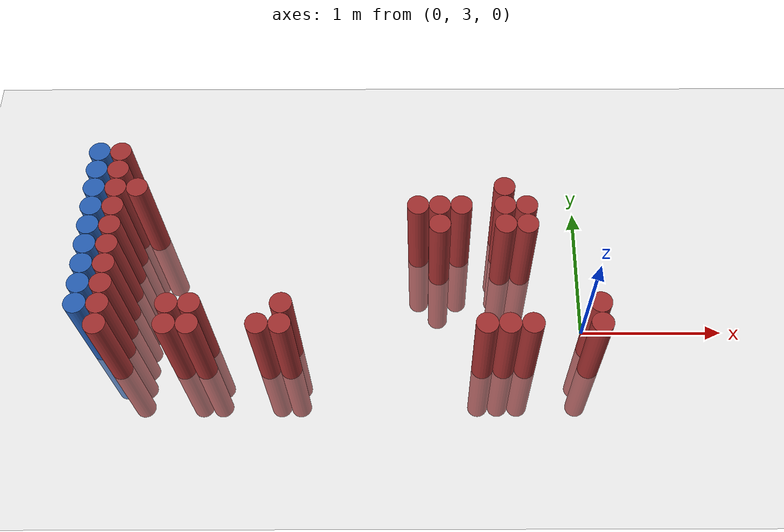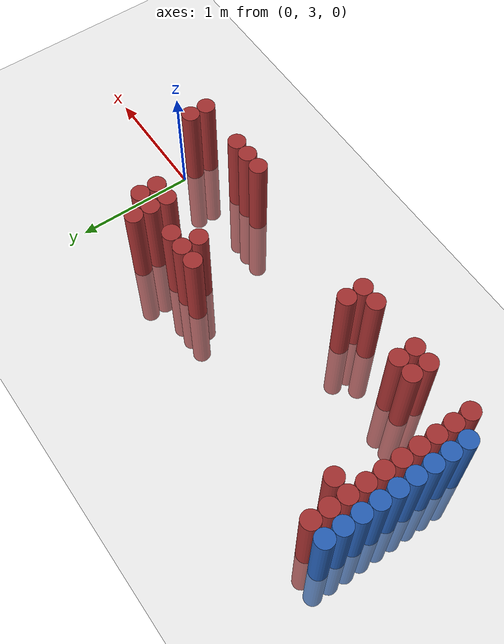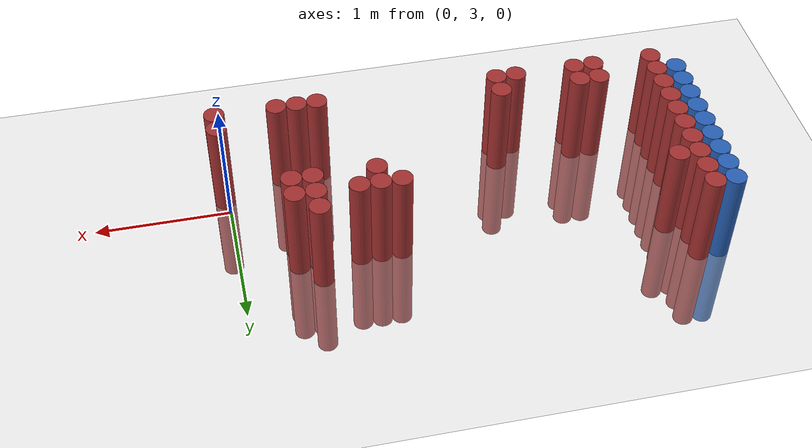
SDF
<sdf version="1.6">
 <world name="default">
  <model name="ground_plane">
   <static>1</static>
   <link name="link">
    <collision name="collision">
     <geometry><plane><normal>0 0 1</normal><size>100 100</size></plane></geometry>
     <surface><friction><ode><mu>100</mu><mu2>50</mu2></ode></friction></surface>
    </collision>
    <visual name="visual">
     <cast_shadows>0</cast_shadows>
     <geometry><plane><normal>0 0 1</normal><size>100 100</size></plane></geometry>
     <material>
      <script><uri>file://media/materials/scripts/gazebo.material</uri><name>Gazebo/Grey</name></script>
     </material>
    </visual>
   </link>
  </model>
  <model name="unit_cylinder_153">
   <static>1</static>
   <pose>-3.425000 2.875000 0.000000 0.000000 0.000000 0.000000</pose>
   <link name="link">
    <inertial>
     <mass>1</mass>
     <inertia><ixx>0.145833</ixx><ixy>0</ixy><ixz>0</ixz><iyy>0.145833</iyy><iyz>0</iyz><izz>0.125</izz></inertia>
    </inertial>
    <collision name="collision">
     <geometry><cylinder><radius>0.075000</radius><length>1.5</length></cylinder></geometry>
    </collision>
    <visual name="visual">
     <geometry><cylinder><radius>0.075000</radius><length>1.5</length></cylinder></geometry>
     <material>
      <ambient>0.152000 0.379000 0.720000 1</ambient>
      <diffuse>0.152000 0.379000 0.720000 1</diffuse>
     </material>
     <material>
      <script><name>Gazebo/Grey</name><uri>file://media/materials/scripts/gazebo.material</uri></script>
     </material>
    </visual>
   </link>
  </model>
  <model name="unit_cylinder_155">
   <static>1</static>
   <pose>-3.425000 3.025000 0.000000 0.000000 0.000000 0.000000</pose>
   <link name="link">
    <inertial>
     <mass>1</mass>
     <inertia><ixx>0.145833</ixx><ixy>0</ixy><ixz>0</ixz><iyy>0.145833</iyy><iyz>0</iyz><izz>0.125</izz></inertia>
    </inertial>
    <collision name="collision">
     <geometry><cylinder><radius>0.075000</radius><length>1.5</length></cylinder></geometry>
    </collision>
    <visual name="visual">
     <geometry><cylinder><radius>0.075000</radius><length>1.5</length></cylinder></geometry>
     <material>
      <ambient>0.152000 0.379000 0.720000 1</ambient>
      <diffuse>0.152000 0.379000 0.720000 1</diffuse>
     </material>
     <material>
      <script><name>Gazebo/Grey</name><uri>file://media/materials/scripts/gazebo.material</uri></script>
     </material>
    </visual>
   </link>
  </model>
  <model name="unit_cylinder_157">
   <static>1</static>
   <pose>-3.425000 3.175000 0.000000 0.000000 0.000000 0.000000</pose>
   <link name="link">
    <inertial>
     <mass>1</mass>
     <inertia><ixx>0.145833</ixx><ixy>0</ixy><ixz>0</ixz><iyy>0.145833</iyy><iyz>0</iyz><izz>0.125</izz></inertia>
    </inertial>
    <collision name="collision">
     <geometry><cylinder><radius>0.075000</radius><length>1.5</length></cylinder></geometry>
    </collision>
    <visual name="visual">
     <geometry><cylinder><radius>0.075000</radius><length>1.5</length></cylinder></geometry>
     <material>
      <ambient>0.152000 0.379000 0.720000 1</ambient>
      <diffuse>0.152000 0.379000 0.720000 1</diffuse>
     </material>
     <material>
      <script><name>Gazebo/Grey</name><uri>file://media/materials/scripts/gazebo.material</uri></script>
     </material>
    </visual>
   </link>
  </model>
  <model name="unit_cylinder_159">
   <static>1</static>
   <pose>-3.425000 3.325000 0.000000 0.000000 0.000000 0.000000</pose>
   <link name="link">
    <inertial>
     <mass>1</mass>
     <inertia><ixx>0.145833</ixx><ixy>0</ixy><ixz>0</ixz><iyy>0.145833</iyy><iyz>0</iyz><izz>0.125</izz></inertia>
    </inertial>
    <collision name="collision">
     <geometry><cylinder><radius>0.075000</radius><length>1.5</length></cylinder></geometry>
    </collision>
    <visual name="visual">
     <geometry><cylinder><radius>0.075000</radius><length>1.5</length></cylinder></geometry>
     <material>
      <ambient>0.152000 0.379000 0.720000 1</ambient>
      <diffuse>0.152000 0.379000 0.720000 1</diffuse>
     </material>
     <material>
      <script><name>Gazebo/Grey</name><uri>file://media/materials/scripts/gazebo.material</uri></script>
     </material>
    </visual>
   </link>
  </model>
  <model name="unit_cylinder_161">
   <static>1</static>
   <pose>-3.425000 3.475000 0.000000 0.000000 0.000000 0.000000</pose>
   <link name="link">
    <inertial>
     <mass>1</mass>
     <inertia><ixx>0.145833</ixx><ixy>0</ixy><ixz>0</ixz><iyy>0.145833</iyy><iyz>0</iyz><izz>0.125</izz></inertia>
    </inertial>
    <collision name="collision">
     <geometry><cylinder><radius>0.075000</radius><length>1.5</length></cylinder></geometry>
    </collision>
    <visual name="visual">
     <geometry><cylinder><radius>0.075000</radius><length>1.5</length></cylinder></geometry>
     <material>
      <ambient>0.152000 0.379000 0.720000 1</ambient>
      <diffuse>0.152000 0.379000 0.720000 1</diffuse>
     </material>
     <material>
      <script><name>Gazebo/Grey</name><uri>file://media/materials/scripts/gazebo.material</uri></script>
     </material>
    </visual>
   </link>
  </model>
  <model name="unit_cylinder_163">
   <static>1</static>
   <pose>-3.425000 3.625000 0.000000 0.000000 0.000000 0.000000</pose>
   <link name="link">
    <inertial>
     <mass>1</mass>
     <inertia><ixx>0.145833</ixx><ixy>0</ixy><ixz>0</ixz><iyy>0.145833</iyy><iyz>0</iyz><izz>0.125</izz></inertia>
    </inertial>
    <collision name="collision">
     <geometry><cylinder><radius>0.075000</radius><length>1.5</length></cylinder></geometry>
    </collision>
    <visual name="visual">
     <geometry><cylinder><radius>0.075000</radius><length>1.5</length></cylinder></geometry>
     <material>
      <ambient>0.152000 0.379000 0.720000 1</ambient>
      <diffuse>0.152000 0.379000 0.720000 1</diffuse>
     </material>
     <material>
      <script><name>Gazebo/Grey</name><uri>file://media/materials/scripts/gazebo.material</uri></script>
     </material>
    </visual>
   </link>
  </model>
  <model name="unit_cylinder_165">
   <static>1</static>
   <pose>-3.425000 3.775000 0.000000 0.000000 0.000000 0.000000</pose>
   <link name="link">
    <inertial>
     <mass>1</mass>
     <inertia><ixx>0.145833</ixx><ixy>0</ixy><ixz>0</ixz><iyy>0.145833</iyy><iyz>0</iyz><izz>0.125</izz></inertia>
    </inertial>
    <collision name="collision">
     <geometry><cylinder><radius>0.075000</radius><length>1.5</length></cylinder></geometry>
    </collision>
    <visual name="visual">
     <geometry><cylinder><radius>0.075000</radius><length>1.5</length></cylinder></geometry>
     <material>
      <ambient>0.152000 0.379000 0.720000 1</ambient>
      <diffuse>0.152000 0.379000 0.720000 1</diffuse>
     </material>
     <material>
      <script><name>Gazebo/Grey</name><uri>file://media/materials/scripts/gazebo.material</uri></script>
     </material>
    </visual>
   </link>
  </model>
  <model name="unit_cylinder_167">
   <static>1</static>
   <pose>-3.425000 3.925000 0.000000 0.000000 0.000000 0.000000</pose>
   <link name="link">
    <inertial>
     <mass>1</mass>
     <inertia><ixx>0.145833</ixx><ixy>0</ixy><ixz>0</ixz><iyy>0.145833</iyy><iyz>0</iyz><izz>0.125</izz></inertia>
    </inertial>
    <collision name="collision">
     <geometry><cylinder><radius>0.075000</radius><length>1.5</length></cylinder></geometry>
    </collision>
    <visual name="visual">
     <geometry><cylinder><radius>0.075000</radius><length>1.5</length></cylinder></geometry>
     <material>
      <ambient>0.152000 0.379000 0.720000 1</ambient>
      <diffuse>0.152000 0.379000 0.720000 1</diffuse>
     </material>
     <material>
      <script><name>Gazebo/Grey</name><uri>file://media/materials/scripts/gazebo.material</uri></script>
     </material>
    </visual>
   </link>
  </model>
  <model name="unit_cylinder_169">
   <static>1</static>
   <pose>-3.425000 4.075000 0.000000 0.000000 0.000000 0.000000</pose>
   <link name="link">
    <inertial>
     <mass>1</mass>
     <inertia><ixx>0.145833</ixx><ixy>0</ixy><ixz>0</ixz><iyy>0.145833</iyy><iyz>0</iyz><izz>0.125</izz></inertia>
    </inertial>
    <collision name="collision">
     <geometry><cylinder><radius>0.075000</radius><length>1.5</length></cylinder></geometry>
    </collision>
    <visual name="visual">
     <geometry><cylinder><radius>0.075000</radius><length>1.5</length></cylinder></geometry>
     <material>
      <ambient>0.152000 0.379000 0.720000 1</ambient>
      <diffuse>0.152000 0.379000 0.720000 1</diffuse>
     </material>
     <material>
      <script><name>Gazebo/Grey</name><uri>file://media/materials/scripts/gazebo.material</uri></script>
     </material>
    </visual>
   </link>
  </model>
  <model name="unit_cylinder_240">
   <static>1</static>
   <pose>-3.425000 2.875000 0.000000 0.000000 0.000000 0.000000</pose>
   <link name="link">
    <inertial>
     <mass>1</mass>
     <inertia><ixx>0.145833</ixx><ixy>0</ixy><ixz>0</ixz><iyy>0.145833</iyy><iyz>0</iyz><izz>0.125</izz></inertia>
    </inertial>
    <collision name="collision">
     <geometry><cylinder><radius>0.075000</radius><length>1.5</length></cylinder></geometry>
    </collision>
    <visual name="visual">
     <geometry><cylinder><radius>0.075000</radius><length>1.5</length></cylinder></geometry>
     <material>
      <ambient>0.152000 0.379000 0.720000 1</ambient>
      <diffuse>0.152000 0.379000 0.720000 1</diffuse>
     </material>
     <material>
      <script><name>Gazebo/Grey</name><uri>file://media/materials/scripts/gazebo.material</uri></script>
     </material>
    </visual>
   </link>
  </model>
  <model name="unit_cylinder_241">
   <static>1</static>
   <pose>-3.425000 3.025000 0.000000 0.000000 0.000000 0.000000</pose>
   <link name="link">
    <inertial>
     <mass>1</mass>
     <inertia><ixx>0.145833</ixx><ixy>0</ixy><ixz>0</ixz><iyy>0.145833</iyy><iyz>0</iyz><izz>0.125</izz></inertia>
    </inertial>
    <collision name="collision">
     <geometry><cylinder><radius>0.075000</radius><length>1.5</length></cylinder></geometry>
    </collision>
    <visual name="visual">
     <geometry><cylinder><radius>0.075000</radius><length>1.5</length></cylinder></geometry>
     <material>
      <ambient>0.152000 0.379000 0.720000 1</ambient>
      <diffuse>0.152000 0.379000 0.720000 1</diffuse>
     </material>
     <material>
      <script><name>Gazebo/Grey</name><uri>file://media/materials/scripts/gazebo.material</uri></script>
     </material>
    </visual>
   </link>
  </model>
  <model name="unit_cylinder_242">
   <static>1</static>
   <pose>-3.425000 3.175000 0.000000 0.000000 0.000000 0.000000</pose>
   <link name="link">
    <inertial>
     <mass>1</mass>
     <inertia><ixx>0.145833</ixx><ixy>0</ixy><ixz>0</ixz><iyy>0.145833</iyy><iyz>0</iyz><izz>0.125</izz></inertia>
    </inertial>
    <collision name="collision">
     <geometry><cylinder><radius>0.075000</radius><length>1.5</length></cylinder></geometry>
    </collision>
    <visual name="visual">
     <geometry><cylinder><radius>0.075000</radius><length>1.5</length></cylinder></geometry>
     <material>
      <ambient>0.152000 0.379000 0.720000 1</ambient>
      <diffuse>0.152000 0.379000 0.720000 1</diffuse>
     </material>
     <material>
      <script><name>Gazebo/Grey</name><uri>file://media/materials/scripts/gazebo.material</uri></script>
     </material>
    </visual>
   </link>
  </model>
  <model name="unit_cylinder_243">
   <static>1</static>
   <pose>-3.425000 3.325000 0.000000 0.000000 0.000000 0.000000</pose>
   <link name="link">
    <inertial>
     <mass>1</mass>
     <inertia><ixx>0.145833</ixx><ixy>0</ixy><ixz>0</ixz><iyy>0.145833</iyy><iyz>0</iyz><izz>0.125</izz></inertia>
    </inertial>
    <collision name="collision">
     <geometry><cylinder><radius>0.075000</radius><length>1.5</length></cylinder></geometry>
    </collision>
    <visual name="visual">
     <geometry><cylinder><radius>0.075000</radius><length>1.5</length></cylinder></geometry>
     <material>
      <ambient>0.152000 0.379000 0.720000 1</ambient>
      <diffuse>0.152000 0.379000 0.720000 1</diffuse>
     </material>
     <material>
      <script><name>Gazebo/Grey</name><uri>file://media/materials/scripts/gazebo.material</uri></script>
     </material>
    </visual>
   </link>
  </model>
  <model name="unit_cylinder_244">
   <static>1</static>
   <pose>-3.425000 3.475000 0.000000 0.000000 0.000000 0.000000</pose>
   <link name="link">
    <inertial>
     <mass>1</mass>
     <inertia><ixx>0.145833</ixx><ixy>0</ixy><ixz>0</ixz><iyy>0.145833</iyy><iyz>0</iyz><izz>0.125</izz></inertia>
    </inertial>
    <collision name="collision">
     <geometry><cylinder><radius>0.075000</radius><length>1.5</length></cylinder></geometry>
    </collision>
    <visual name="visual">
     <geometry><cylinder><radius>0.075000</radius><length>1.5</length></cylinder></geometry>
     <material>
      <ambient>0.152000 0.379000 0.720000 1</ambient>
      <diffuse>0.152000 0.379000 0.720000 1</diffuse>
     </material>
     <material>
      <script><name>Gazebo/Grey</name><uri>file://media/materials/scripts/gazebo.material</uri></script>
     </material>
    </visual>
   </link>
  </model>
  <model name="unit_cylinder_245">
   <static>1</static>
   <pose>-3.425000 3.625000 0.000000 0.000000 0.000000 0.000000</pose>
   <link name="link">
    <inertial>
     <mass>1</mass>
     <inertia><ixx>0.145833</ixx><ixy>0</ixy><ixz>0</ixz><iyy>0.145833</iyy><iyz>0</iyz><izz>0.125</izz></inertia>
    </inertial>
    <collision name="collision">
     <geometry><cylinder><radius>0.075000</radius><length>1.5</length></cylinder></geometry>
    </collision>
    <visual name="visual">
     <geometry><cylinder><radius>0.075000</radius><length>1.5</length></cylinder></geometry>
     <material>
      <ambient>0.152000 0.379000 0.720000 1</ambient>
      <diffuse>0.152000 0.379000 0.720000 1</diffuse>
     </material>
     <material>
      <script><name>Gazebo/Grey</name><uri>file://media/materials/scripts/gazebo.material</uri></script>
     </material>
    </visual>
   </link>
  </model>
  <model name="unit_cylinder_246">
   <static>1</static>
   <pose>-3.425000 3.775000 0.000000 0.000000 0.000000 0.000000</pose>
   <link name="link">
    <inertial>
     <mass>1</mass>
     <inertia><ixx>0.145833</ixx><ixy>0</ixy><ixz>0</ixz><iyy>0.145833</iyy><iyz>0</iyz><izz>0.125</izz></inertia>
    </inertial>
    <collision name="collision">
     <geometry><cylinder><radius>0.075000</radius><length>1.5</length></cylinder></geometry>
    </collision>
    <visual name="visual">
     <geometry><cylinder><radius>0.075000</radius><length>1.5</length></cylinder></geometry>
     <material>
      <ambient>0.152000 0.379000 0.720000 1</ambient>
      <diffuse>0.152000 0.379000 0.720000 1</diffuse>
     </material>
     <material>
      <script><name>Gazebo/Grey</name><uri>file://media/materials/scripts/gazebo.material</uri></script>
     </material>
    </visual>
   </link>
  </model>
  <model name="unit_cylinder_247">
   <static>1</static>
   <pose>-3.425000 3.925000 0.000000 0.000000 0.000000 0.000000</pose>
   <link name="link">
    <inertial>
     <mass>1</mass>
     <inertia><ixx>0.145833</ixx><ixy>0</ixy><ixz>0</ixz><iyy>0.145833</iyy><iyz>0</iyz><izz>0.125</izz></inertia>
    </inertial>
    <collision name="collision">
     <geometry><cylinder><radius>0.075000</radius><length>1.5</length></cylinder></geometry>
    </collision>
    <visual name="visual">
     <geometry><cylinder><radius>0.075000</radius><length>1.5</length></cylinder></geometry>
     <material>
      <ambient>0.152000 0.379000 0.720000 1</ambient>
      <diffuse>0.152000 0.379000 0.720000 1</diffuse>
     </material>
     <material>
      <script><name>Gazebo/Grey</name><uri>file://media/materials/scripts/gazebo.material</uri></script>
     </material>
    </visual>
   </link>
  </model>
  <model name="unit_cylinder_248">
   <static>1</static>
   <pose>-3.425000 4.075000 0.000000 0.000000 0.000000 0.000000</pose>
   <link name="link">
    <inertial>
     <mass>1</mass>
     <inertia><ixx>0.145833</ixx><ixy>0</ixy><ixz>0</ixz><iyy>0.145833</iyy><iyz>0</iyz><izz>0.125</izz></inertia>
    </inertial>
    <collision name="collision">
     <geometry><cylinder><radius>0.075000</radius><length>1.5</length></cylinder></geometry>
    </collision>
    <visual name="visual">
     <geometry><cylinder><radius>0.075000</radius><length>1.5</length></cylinder></geometry>
     <material>
      <ambient>0.152000 0.379000 0.720000 1</ambient>
      <diffuse>0.152000 0.379000 0.720000 1</diffuse>
     </material>
     <material>
      <script><name>Gazebo/Grey</name><uri>file://media/materials/scripts/gazebo.material</uri></script>
     </material>
    </visual>
   </link>
  </model>
  <model name="unit_cylinder_269">
   <static>1</static>
   <pose>-3.275000 2.725000 0.000000 0.000000 0.000000 0.000000</pose>
   <link name="link">
    <inertial>
     <mass>1</mass>
     <inertia><ixx>0.145833</ixx><ixy>0</ixy><ixz>0</ixz><iyy>0.145833</iyy><iyz>0</iyz><izz>0.125</izz></inertia>
    </inertial>
    <collision name="collision">
     <geometry><cylinder><radius>0.075000</radius><length>1.5</length></cylinder></geometry>
    </collision>
    <visual name="visual">
     <geometry><cylinder><radius>0.075000</radius><length>1.5</length></cylinder></geometry>
     <material>
      <ambient>0.648000 0.192000 0.192000 1</ambient>
      <diffuse>0.648000 0.192000 0.192000 1</diffuse>
     </material>
     <material>
      <script><name>Gazebo/Grey</name><uri>file://media/materials/scripts/gazebo.material</uri></script>
     </material>
    </visual>
   </link>
  </model>
  <model name="unit_cylinder_270">
   <static>1</static>
   <pose>-3.275000 2.875000 0.000000 0.000000 0.000000 0.000000</pose>
   <link name="link">
    <inertial>
     <mass>1</mass>
     <inertia><ixx>0.145833</ixx><ixy>0</ixy><ixz>0</ixz><iyy>0.145833</iyy><iyz>0</iyz><izz>0.125</izz></inertia>
    </inertial>
    <collision name="collision">
     <geometry><cylinder><radius>0.075000</radius><length>1.5</length></cylinder></geometry>
    </collision>
    <visual name="visual">
     <geometry><cylinder><radius>0.075000</radius><length>1.5</length></cylinder></geometry>
     <material>
      <ambient>0.648000 0.192000 0.192000 1</ambient>
      <diffuse>0.648000 0.192000 0.192000 1</diffuse>
     </material>
     <material>
      <script><name>Gazebo/Grey</name><uri>file://media/materials/scripts/gazebo.material</uri></script>
     </material>
    </visual>
   </link>
  </model>
  <model name="unit_cylinder_271">
   <static>1</static>
   <pose>-3.275000 3.025000 0.000000 0.000000 0.000000 0.000000</pose>
   <link name="link">
    <inertial>
     <mass>1</mass>
     <inertia><ixx>0.145833</ixx><ixy>0</ixy><ixz>0</ixz><iyy>0.145833</iyy><iyz>0</iyz><izz>0.125</izz></inertia>
    </inertial>
    <collision name="collision">
     <geometry><cylinder><radius>0.075000</radius><length>1.5</length></cylinder></geometry>
    </collision>
    <visual name="visual">
     <geometry><cylinder><radius>0.075000</radius><length>1.5</length></cylinder></geometry>
     <material>
      <ambient>0.648000 0.192000 0.192000 1</ambient>
      <diffuse>0.648000 0.192000 0.192000 1</diffuse>
     </material>
     <material>
      <script><name>Gazebo/Grey</name><uri>file://media/materials/scripts/gazebo.material</uri></script>
     </material>
    </visual>
   </link>
  </model>
  <model name="unit_cylinder_272">
   <static>1</static>
   <pose>-3.275000 3.175000 0.000000 0.000000 0.000000 0.000000</pose>
   <link name="link">
    <inertial>
     <mass>1</mass>
     <inertia><ixx>0.145833</ixx><ixy>0</ixy><ixz>0</ixz><iyy>0.145833</iyy><iyz>0</iyz><izz>0.125</izz></inertia>
    </inertial>
    <collision name="collision">
     <geometry><cylinder><radius>0.075000</radius><length>1.5</length></cylinder></geometry>
    </collision>
    <visual name="visual">
     <geometry><cylinder><radius>0.075000</radius><length>1.5</length></cylinder></geometry>
     <material>
      <ambient>0.648000 0.192000 0.192000 1</ambient>
      <diffuse>0.648000 0.192000 0.192000 1</diffuse>
     </material>
     <material>
      <script><name>Gazebo/Grey</name><uri>file://media/materials/scripts/gazebo.material</uri></script>
     </material>
    </visual>
   </link>
  </model>
  <model name="unit_cylinder_273">
   <static>1</static>
   <pose>-3.275000 3.325000 0.000000 0.000000 0.000000 0.000000</pose>
   <link name="link">
    <inertial>
     <mass>1</mass>
     <inertia><ixx>0.145833</ixx><ixy>0</ixy><ixz>0</ixz><iyy>0.145833</iyy><iyz>0</iyz><izz>0.125</izz></inertia>
    </inertial>
    <collision name="collision">
     <geometry><cylinder><radius>0.075000</radius><length>1.5</length></cylinder></geometry>
    </collision>
    <visual name="visual">
     <geometry><cylinder><radius>0.075000</radius><length>1.5</length></cylinder></geometry>
     <material>
      <ambient>0.648000 0.192000 0.192000 1</ambient>
      <diffuse>0.648000 0.192000 0.192000 1</diffuse>
     </material>
     <material>
      <script><name>Gazebo/Grey</name><uri>file://media/materials/scripts/gazebo.material</uri></script>
     </material>
    </visual>
   </link>
  </model>
  <model name="unit_cylinder_274">
   <static>1</static>
   <pose>-3.275000 3.475000 0.000000 0.000000 0.000000 0.000000</pose>
   <link name="link">
    <inertial>
     <mass>1</mass>
     <inertia><ixx>0.145833</ixx><ixy>0</ixy><ixz>0</ixz><iyy>0.145833</iyy><iyz>0</iyz><izz>0.125</izz></inertia>
    </inertial>
    <collision name="collision">
     <geometry><cylinder><radius>0.075000</radius><length>1.5</length></cylinder></geometry>
    </collision>
    <visual name="visual">
     <geometry><cylinder><radius>0.075000</radius><length>1.5</length></cylinder></geometry>
     <material>
      <ambient>0.648000 0.192000 0.192000 1</ambient>
      <diffuse>0.648000 0.192000 0.192000 1</diffuse>
     </material>
     <material>
      <script><name>Gazebo/Grey</name><uri>file://media/materials/scripts/gazebo.material</uri></script>
     </material>
    </visual>
   </link>
  </model>
  <model name="unit_cylinder_275">
   <static>1</static>
   <pose>-3.275000 3.625000 0.000000 0.000000 0.000000 0.000000</pose>
   <link name="link">
    <inertial>
     <mass>1</mass>
     <inertia><ixx>0.145833</ixx><ixy>0</ixy><ixz>0</ixz><iyy>0.145833</iyy><iyz>0</iyz><izz>0.125</izz></inertia>
    </inertial>
    <collision name="collision">
     <geometry><cylinder><radius>0.075000</radius><length>1.5</length></cylinder></geometry>
    </collision>
    <visual name="visual">
     <geometry><cylinder><radius>0.075000</radius><length>1.5</length></cylinder></geometry>
     <material>
      <ambient>0.648000 0.192000 0.192000 1</ambient>
      <diffuse>0.648000 0.192000 0.192000 1</diffuse>
     </material>
     <material>
      <script><name>Gazebo/Grey</name><uri>file://media/materials/scripts/gazebo.material</uri></script>
     </material>
    </visual>
   </link>
  </model>
  <model name="unit_cylinder_276">
   <static>1</static>
   <pose>-3.275000 3.775000 0.000000 0.000000 0.000000 0.000000</pose>
   <link name="link">
    <inertial>
     <mass>1</mass>
     <inertia><ixx>0.145833</ixx><ixy>0</ixy><ixz>0</ixz><iyy>0.145833</iyy><iyz>0</iyz><izz>0.125</izz></inertia>
    </inertial>
    <collision name="collision">
     <geometry><cylinder><radius>0.075000</radius><length>1.5</length></cylinder></geometry>
    </collision>
    <visual name="visual">
     <geometry><cylinder><radius>0.075000</radius><length>1.5</length></cylinder></geometry>
     <material>
      <ambient>0.648000 0.192000 0.192000 1</ambient>
      <diffuse>0.648000 0.192000 0.192000 1</diffuse>
     </material>
     <material>
      <script><name>Gazebo/Grey</name><uri>file://media/materials/scripts/gazebo.material</uri></script>
     </material>
    </visual>
   </link>
  </model>
  <model name="unit_cylinder_277">
   <static>1</static>
   <pose>-3.275000 3.925000 0.000000 0.000000 0.000000 0.000000</pose>
   <link name="link">
    <inertial>
     <mass>1</mass>
     <inertia><ixx>0.145833</ixx><ixy>0</ixy><ixz>0</ixz><iyy>0.145833</iyy><iyz>0</iyz><izz>0.125</izz></inertia>
    </inertial>
    <collision name="collision">
     <geometry><cylinder><radius>0.075000</radius><length>1.5</length></cylinder></geometry>
    </collision>
    <visual name="visual">
     <geometry><cylinder><radius>0.075000</radius><length>1.5</length></cylinder></geometry>
     <material>
      <ambient>0.648000 0.192000 0.192000 1</ambient>
      <diffuse>0.648000 0.192000 0.192000 1</diffuse>
     </material>
     <material>
      <script><name>Gazebo/Grey</name><uri>file://media/materials/scripts/gazebo.material</uri></script>
     </material>
    </visual>
   </link>
  </model>
  <model name="unit_cylinder_278">
   <static>1</static>
   <pose>-3.275000 4.075000 0.000000 0.000000 0.000000 0.000000</pose>
   <link name="link">
    <inertial>
     <mass>1</mass>
     <inertia><ixx>0.145833</ixx><ixy>0</ixy><ixz>0</ixz><iyy>0.145833</iyy><iyz>0</iyz><izz>0.125</izz></inertia>
    </inertial>
    <collision name="collision">
     <geometry><cylinder><radius>0.075000</radius><length>1.5</length></cylinder></geometry>
    </collision>
    <visual name="visual">
     <geometry><cylinder><radius>0.075000</radius><length>1.5</length></cylinder></geometry>
     <material>
      <ambient>0.648000 0.192000 0.192000 1</ambient>
      <diffuse>0.648000 0.192000 0.192000 1</diffuse>
     </material>
     <material>
      <script><name>Gazebo/Grey</name><uri>file://media/materials/scripts/gazebo.material</uri></script>
     </material>
    </visual>
   </link>
  </model>
  <model name="unit_cylinder_287">
   <static>1</static>
   <pose>-3.125000 3.775000 0.000000 0.000000 0.000000 0.000000</pose>
   <link name="link">
    <inertial>
     <mass>1</mass>
     <inertia><ixx>0.145833</ixx><ixy>0</ixy><ixz>0</ixz><iyy>0.145833</iyy><iyz>0</iyz><izz>0.125</izz></inertia>
    </inertial>
    <collision name="collision">
     <geometry><cylinder><radius>0.075000</radius><length>1.5</length></cylinder></geometry>
    </collision>
    <visual name="visual">
     <geometry><cylinder><radius>0.075000</radius><length>1.5</length></cylinder></geometry>
     <material>
      <ambient>0.648000 0.192000 0.192000 1</ambient>
      <diffuse>0.648000 0.192000 0.192000 1</diffuse>
     </material>
     <material>
      <script><name>Gazebo/Grey</name><uri>file://media/materials/scripts/gazebo.material</uri></script>
     </material>
    </visual>
   </link>
  </model>
  <model name="unit_cylinder_293">
   <static>1</static>
   <pose>-2.825000 2.725000 0.000000 0.000000 0.000000 0.000000</pose>
   <link name="link">
    <inertial>
     <mass>1</mass>
     <inertia><ixx>0.145833</ixx><ixy>0</ixy><ixz>0</ixz><iyy>0.145833</iyy><iyz>0</iyz><izz>0.125</izz></inertia>
    </inertial>
    <collision name="collision">
     <geometry><cylinder><radius>0.075000</radius><length>1.5</length></cylinder></geometry>
    </collision>
    <visual name="visual">
     <geometry><cylinder><radius>0.075000</radius><length>1.5</length></cylinder></geometry>
     <material>
      <ambient>0.648000 0.192000 0.192000 1</ambient>
      <diffuse>0.648000 0.192000 0.192000 1</diffuse>
     </material>
     <material>
      <script><name>Gazebo/Grey</name><uri>file://media/materials/scripts/gazebo.material</uri></script>
     </material>
    </visual>
   </link>
  </model>
  <model name="unit_cylinder_294">
   <static>1</static>
   <pose>-2.825000 2.875000 0.000000 0.000000 0.000000 0.000000</pose>
   <link name="link">
    <inertial>
     <mass>1</mass>
     <inertia><ixx>0.145833</ixx><ixy>0</ixy><ixz>0</ixz><iyy>0.145833</iyy><iyz>0</iyz><izz>0.125</izz></inertia>
    </inertial>
    <collision name="collision">
     <geometry><cylinder><radius>0.075000</radius><length>1.5</length></cylinder></geometry>
    </collision>
    <visual name="visual">
     <geometry><cylinder><radius>0.075000</radius><length>1.5</length></cylinder></geometry>
     <material>
      <ambient>0.648000 0.192000 0.192000 1</ambient>
      <diffuse>0.648000 0.192000 0.192000 1</diffuse>
     </material>
     <material>
      <script><name>Gazebo/Grey</name><uri>file://media/materials/scripts/gazebo.material</uri></script>
     </material>
    </visual>
   </link>
  </model>
  <model name="unit_cylinder_298">
   <static>1</static>
   <pose>-2.675000 2.725000 0.000000 0.000000 0.000000 0.000000</pose>
   <link name="link">
    <inertial>
     <mass>1</mass>
     <inertia><ixx>0.145833</ixx><ixy>0</ixy><ixz>0</ixz><iyy>0.145833</iyy><iyz>0</iyz><izz>0.125</izz></inertia>
    </inertial>
    <collision name="collision">
     <geometry><cylinder><radius>0.075000</radius><length>1.5</length></cylinder></geometry>
    </collision>
    <visual name="visual">
     <geometry><cylinder><radius>0.075000</radius><length>1.5</length></cylinder></geometry>
     <material>
      <ambient>0.648000 0.192000 0.192000 1</ambient>
      <diffuse>0.648000 0.192000 0.192000 1</diffuse>
     </material>
     <material>
      <script><name>Gazebo/Grey</name><uri>file://media/materials/scripts/gazebo.material</uri></script>
     </material>
    </visual>
   </link>
  </model>
  <model name="unit_cylinder_299">
   <static>1</static>
   <pose>-2.675000 2.875000 0.000000 0.000000 0.000000 0.000000</pose>
   <link name="link">
    <inertial>
     <mass>1</mass>
     <inertia><ixx>0.145833</ixx><ixy>0</ixy><ixz>0</ixz><iyy>0.145833</iyy><iyz>0</iyz><izz>0.125</izz></inertia>
    </inertial>
    <collision name="collision">
     <geometry><cylinder><radius>0.075000</radius><length>1.5</length></cylinder></geometry>
    </collision>
    <visual name="visual">
     <geometry><cylinder><radius>0.075000</radius><length>1.5</length></cylinder></geometry>
     <material>
      <ambient>0.648000 0.192000 0.192000 1</ambient>
      <diffuse>0.648000 0.192000 0.192000 1</diffuse>
     </material>
     <material>
      <script><name>Gazebo/Grey</name><uri>file://media/materials/scripts/gazebo.material</uri></script>
     </material>
    </visual>
   </link>
  </model>
  <model name="unit_cylinder_303">
   <static>1</static>
   <pose>-2.225000 2.725000 0.000000 0.000000 0.000000 0.000000</pose>
   <link name="link">
    <inertial>
     <mass>1</mass>
     <inertia><ixx>0.145833</ixx><ixy>0</ixy><ixz>0</ixz><iyy>0.145833</iyy><iyz>0</iyz><izz>0.125</izz></inertia>
    </inertial>
    <collision name="collision">
     <geometry><cylinder><radius>0.075000</radius><length>1.5</length></cylinder></geometry>
    </collision>
    <visual name="visual">
     <geometry><cylinder><radius>0.075000</radius><length>1.5</length></cylinder></geometry>
     <material>
      <ambient>0.648000 0.192000 0.192000 1</ambient>
      <diffuse>0.648000 0.192000 0.192000 1</diffuse>
     </material>
     <material>
      <script><name>Gazebo/Grey</name><uri>file://media/materials/scripts/gazebo.material</uri></script>
     </material>
    </visual>
   </link>
  </model>
  <model name="unit_cylinder_308">
   <static>1</static>
   <pose>-2.075000 2.725000 0.000000 0.000000 0.000000 0.000000</pose>
   <link name="link">
    <inertial>
     <mass>1</mass>
     <inertia><ixx>0.145833</ixx><ixy>0</ixy><ixz>0</ixz><iyy>0.145833</iyy><iyz>0</iyz><izz>0.125</izz></inertia>
    </inertial>
    <collision name="collision">
     <geometry><cylinder><radius>0.075000</radius><length>1.5</length></cylinder></geometry>
    </collision>
    <visual name="visual">
     <geometry><cylinder><radius>0.075000</radius><length>1.5</length></cylinder></geometry>
     <material>
      <ambient>0.648000 0.192000 0.192000 1</ambient>
      <diffuse>0.648000 0.192000 0.192000 1</diffuse>
     </material>
     <material>
      <script><name>Gazebo/Grey</name><uri>file://media/materials/scripts/gazebo.material</uri></script>
     </material>
    </visual>
   </link>
  </model>
  <model name="unit_cylinder_309">
   <static>1</static>
   <pose>-2.075000 2.875000 0.000000 0.000000 0.000000 0.000000</pose>
   <link name="link">
    <inertial>
     <mass>1</mass>
     <inertia><ixx>0.145833</ixx><ixy>0</ixy><ixz>0</ixz><iyy>0.145833</iyy><iyz>0</iyz><izz>0.125</izz></inertia>
    </inertial>
    <collision name="collision">
     <geometry><cylinder><radius>0.075000</radius><length>1.5</length></cylinder></geometry>
    </collision>
    <visual name="visual">
     <geometry><cylinder><radius>0.075000</radius><length>1.5</length></cylinder></geometry>
     <material>
      <ambient>0.648000 0.192000 0.192000 1</ambient>
      <diffuse>0.648000 0.192000 0.192000 1</diffuse>
     </material>
     <material>
      <script><name>Gazebo/Grey</name><uri>file://media/materials/scripts/gazebo.material</uri></script>
     </material>
    </visual>
   </link>
  </model>
  <model name="unit_cylinder_346">
   <static>1</static>
   <pose>-1.175000 3.625000 0.000000 0.000000 0.000000 0.000000</pose>
   <link name="link">
    <inertial>
     <mass>1</mass>
     <inertia><ixx>0.145833</ixx><ixy>0</ixy><ixz>0</ixz><iyy>0.145833</iyy><iyz>0</iyz><izz>0.125</izz></inertia>
    </inertial>
    <collision name="collision">
     <geometry><cylinder><radius>0.075000</radius><length>1.5</length></cylinder></geometry>
    </collision>
    <visual name="visual">
     <geometry><cylinder><radius>0.075000</radius><length>1.5</length></cylinder></geometry>
     <material>
      <ambient>0.648000 0.192000 0.192000 1</ambient>
      <diffuse>0.648000 0.192000 0.192000 1</diffuse>
     </material>
     <material>
      <script><name>Gazebo/Grey</name><uri>file://media/materials/scripts/gazebo.material</uri></script>
     </material>
    </visual>
   </link>
  </model>
  <model name="unit_cylinder_351">
   <static>1</static>
   <pose>-1.025000 3.475000 0.000000 0.000000 0.000000 0.000000</pose>
   <link name="link">
    <inertial>
     <mass>1</mass>
     <inertia><ixx>0.145833</ixx><ixy>0</ixy><ixz>0</ixz><iyy>0.145833</iyy><iyz>0</iyz><izz>0.125</izz></inertia>
    </inertial>
    <collision name="collision">
     <geometry><cylinder><radius>0.075000</radius><length>1.5</length></cylinder></geometry>
    </collision>
    <visual name="visual">
     <geometry><cylinder><radius>0.075000</radius><length>1.5</length></cylinder></geometry>
     <material>
      <ambient>0.648000 0.192000 0.192000 1</ambient>
      <diffuse>0.648000 0.192000 0.192000 1</diffuse>
     </material>
     <material>
      <script><name>Gazebo/Grey</name><uri>file://media/materials/scripts/gazebo.material</uri></script>
     </material>
    </visual>
   </link>
  </model>
  <model name="unit_cylinder_352">
   <static>1</static>
   <pose>-1.025000 3.625000 0.000000 0.000000 0.000000 0.000000</pose>
   <link name="link">
    <inertial>
     <mass>1</mass>
     <inertia><ixx>0.145833</ixx><ixy>0</ixy><ixz>0</ixz><iyy>0.145833</iyy><iyz>0</iyz><izz>0.125</izz></inertia>
    </inertial>
    <collision name="collision">
     <geometry><cylinder><radius>0.075000</radius><length>1.5</length></cylinder></geometry>
    </collision>
    <visual name="visual">
     <geometry><cylinder><radius>0.075000</radius><length>1.5</length></cylinder></geometry>
     <material>
      <ambient>0.648000 0.192000 0.192000 1</ambient>
      <diffuse>0.648000 0.192000 0.192000 1</diffuse>
     </material>
     <material>
      <script><name>Gazebo/Grey</name><uri>file://media/materials/scripts/gazebo.material</uri></script>
     </material>
    </visual>
   </link>
  </model>
  <model name="unit_cylinder_357">
   <static>1</static>
   <pose>-0.875000 3.625000 0.000000 0.000000 0.000000 0.000000</pose>
   <link name="link">
    <inertial>
     <mass>1</mass>
     <inertia><ixx>0.145833</ixx><ixy>0</ixy><ixz>0</ixz><iyy>0.145833</iyy><iyz>0</iyz><izz>0.125</izz></inertia>
    </inertial>
    <collision name="collision">
     <geometry><cylinder><radius>0.075000</radius><length>1.5</length></cylinder></geometry>
    </collision>
    <visual name="visual">
     <geometry><cylinder><radius>0.075000</radius><length>1.5</length></cylinder></geometry>
     <material>
      <ambient>0.648000 0.192000 0.192000 1</ambient>
      <diffuse>0.648000 0.192000 0.192000 1</diffuse>
     </material>
     <material>
      <script><name>Gazebo/Grey</name><uri>file://media/materials/scripts/gazebo.material</uri></script>
     </material>
    </visual>
   </link>
  </model>
  <model name="unit_cylinder_362">
   <static>1</static>
   <pose>-0.725000 2.725000 0.000000 0.000000 0.000000 0.000000</pose>
   <link name="link">
    <inertial>
     <mass>1</mass>
     <inertia><ixx>0.145833</ixx><ixy>0</ixy><ixz>0</ixz><iyy>0.145833</iyy><iyz>0</iyz><izz>0.125</izz></inertia>
    </inertial>
    <collision name="collision">
     <geometry><cylinder><radius>0.075000</radius><length>1.5</length></cylinder></geometry>
    </collision>
    <visual name="visual">
     <geometry><cylinder><radius>0.075000</radius><length>1.5</length></cylinder></geometry>
     <material>
      <ambient>0.648000 0.192000 0.192000 1</ambient>
      <diffuse>0.648000 0.192000 0.192000 1</diffuse>
     </material>
     <material>
      <script><name>Gazebo/Grey</name><uri>file://media/materials/scripts/gazebo.material</uri></script>
     </material>
    </visual>
   </link>
  </model>
  <model name="unit_cylinder_366">
   <static>1</static>
   <pose>-0.575000 2.725000 0.000000 0.000000 0.000000 0.000000</pose>
   <link name="link">
    <inertial>
     <mass>1</mass>
     <inertia><ixx>0.145833</ixx><ixy>0</ixy><ixz>0</ixz><iyy>0.145833</iyy><iyz>0</iyz><izz>0.125</izz></inertia>
    </inertial>
    <collision name="collision">
     <geometry><cylinder><radius>0.075000</radius><length>1.5</length></cylinder></geometry>
    </collision>
    <visual name="visual">
     <geometry><cylinder><radius>0.075000</radius><length>1.5</length></cylinder></geometry>
     <material>
      <ambient>0.648000 0.192000 0.192000 1</ambient>
      <diffuse>0.648000 0.192000 0.192000 1</diffuse>
     </material>
     <material>
      <script><name>Gazebo/Grey</name><uri>file://media/materials/scripts/gazebo.material</uri></script>
     </material>
    </visual>
   </link>
  </model>
  <model name="unit_cylinder_367">
   <static>1</static>
   <pose>-0.575000 3.475000 0.000000 0.000000 0.000000 0.000000</pose>
   <link name="link">
    <inertial>
     <mass>1</mass>
     <inertia><ixx>0.145833</ixx><ixy>0</ixy><ixz>0</ixz><iyy>0.145833</iyy><iyz>0</iyz><izz>0.125</izz></inertia>
    </inertial>
    <collision name="collision">
     <geometry><cylinder><radius>0.075000</radius><length>1.5</length></cylinder></geometry>
    </collision>
    <visual name="visual">
     <geometry><cylinder><radius>0.075000</radius><length>1.5</length></cylinder></geometry>
     <material>
      <ambient>0.648000 0.192000 0.192000 1</ambient>
      <diffuse>0.648000 0.192000 0.192000 1</diffuse>
     </material>
     <material>
      <script><name>Gazebo/Grey</name><uri>file://media/materials/scripts/gazebo.material</uri></script>
     </material>
    </visual>
   </link>
  </model>
  <model name="unit_cylinder_368">
   <static>1</static>
   <pose>-0.575000 3.625000 0.000000 0.000000 0.000000 0.000000</pose>
   <link name="link">
    <inertial>
     <mass>1</mass>
     <inertia><ixx>0.145833</ixx><ixy>0</ixy><ixz>0</ixz><iyy>0.145833</iyy><iyz>0</iyz><izz>0.125</izz></inertia>
    </inertial>
    <collision name="collision">
     <geometry><cylinder><radius>0.075000</radius><length>1.5</length></cylinder></geometry>
    </collision>
    <visual name="visual">
     <geometry><cylinder><radius>0.075000</radius><length>1.5</length></cylinder></geometry>
     <material>
      <ambient>0.648000 0.192000 0.192000 1</ambient>
      <diffuse>0.648000 0.192000 0.192000 1</diffuse>
     </material>
     <material>
      <script><name>Gazebo/Grey</name><uri>file://media/materials/scripts/gazebo.material</uri></script>
     </material>
    </visual>
   </link>
  </model>
  <model name="unit_cylinder_369">
   <static>1</static>
   <pose>-0.575000 3.775000 0.000000 0.000000 0.000000 0.000000</pose>
   <link name="link">
    <inertial>
     <mass>1</mass>
     <inertia><ixx>0.145833</ixx><ixy>0</ixy><ixz>0</ixz><iyy>0.145833</iyy><iyz>0</iyz><izz>0.125</izz></inertia>
    </inertial>
    <collision name="collision">
     <geometry><cylinder><radius>0.075000</radius><length>1.5</length></cylinder></geometry>
    </collision>
    <visual name="visual">
     <geometry><cylinder><radius>0.075000</radius><length>1.5</length></cylinder></geometry>
     <material>
      <ambient>0.648000 0.192000 0.192000 1</ambient>
      <diffuse>0.648000 0.192000 0.192000 1</diffuse>
     </material>
     <material>
      <script><name>Gazebo/Grey</name><uri>file://media/materials/scripts/gazebo.material</uri></script>
     </material>
    </visual>
   </link>
  </model>
  <model name="unit_cylinder_370">
   <static>1</static>
   <pose>-0.425000 2.725000 0.000000 0.000000 0.000000 0.000000</pose>
   <link name="link">
    <inertial>
     <mass>1</mass>
     <inertia><ixx>0.145833</ixx><ixy>0</ixy><ixz>0</ixz><iyy>0.145833</iyy><iyz>0</iyz><izz>0.125</izz></inertia>
    </inertial>
    <collision name="collision">
     <geometry><cylinder><radius>0.075000</radius><length>1.5</length></cylinder></geometry>
    </collision>
    <visual name="visual">
     <geometry><cylinder><radius>0.075000</radius><length>1.5</length></cylinder></geometry>
     <material>
      <ambient>0.648000 0.192000 0.192000 1</ambient>
      <diffuse>0.648000 0.192000 0.192000 1</diffuse>
     </material>
     <material>
      <script><name>Gazebo/Grey</name><uri>file://media/materials/scripts/gazebo.material</uri></script>
     </material>
    </visual>
   </link>
  </model>
  <model name="unit_cylinder_371">
   <static>1</static>
   <pose>-0.425000 3.475000 0.000000 0.000000 0.000000 0.000000</pose>
   <link name="link">
    <inertial>
     <mass>1</mass>
     <inertia><ixx>0.145833</ixx><ixy>0</ixy><ixz>0</ixz><iyy>0.145833</iyy><iyz>0</iyz><izz>0.125</izz></inertia>
    </inertial>
    <collision name="collision">
     <geometry><cylinder><radius>0.075000</radius><length>1.5</length></cylinder></geometry>
    </collision>
    <visual name="visual">
     <geometry><cylinder><radius>0.075000</radius><length>1.5</length></cylinder></geometry>
     <material>
      <ambient>0.648000 0.192000 0.192000 1</ambient>
      <diffuse>0.648000 0.192000 0.192000 1</diffuse>
     </material>
     <material>
      <script><name>Gazebo/Grey</name><uri>file://media/materials/scripts/gazebo.material</uri></script>
     </material>
    </visual>
   </link>
  </model>
  <model name="unit_cylinder_372">
   <static>1</static>
   <pose>-0.425000 3.625000 0.000000 0.000000 0.000000 0.000000</pose>
   <link name="link">
    <inertial>
     <mass>1</mass>
     <inertia><ixx>0.145833</ixx><ixy>0</ixy><ixz>0</ixz><iyy>0.145833</iyy><iyz>0</iyz><izz>0.125</izz></inertia>
    </inertial>
    <collision name="collision">
     <geometry><cylinder><radius>0.075000</radius><length>1.5</length></cylinder></geometry>
    </collision>
    <visual name="visual">
     <geometry><cylinder><radius>0.075000</radius><length>1.5</length></cylinder></geometry>
     <material>
      <ambient>0.648000 0.192000 0.192000 1</ambient>
      <diffuse>0.648000 0.192000 0.192000 1</diffuse>
     </material>
     <material>
      <script><name>Gazebo/Grey</name><uri>file://media/materials/scripts/gazebo.material</uri></script>
     </material>
    </visual>
   </link>
  </model>
  <model name="unit_cylinder_381">
   <static>1</static>
   <pose>0.025000 2.725000 0.000000 0.000000 0.000000 0.000000</pose>
   <link name="link">
    <inertial>
     <mass>1</mass>
     <inertia><ixx>0.145833</ixx><ixy>0</ixy><ixz>0</ixz><iyy>0.145833</iyy><iyz>0</iyz><izz>0.125</izz></inertia>
    </inertial>
    <collision name="collision">
     <geometry><cylinder><radius>0.075000</radius><length>1.5</length></cylinder></geometry>
    </collision>
    <visual name="visual">
     <geometry><cylinder><radius>0.075000</radius><length>1.5</length></cylinder></geometry>
     <material>
      <ambient>0.648000 0.192000 0.192000 1</ambient>
      <diffuse>0.648000 0.192000 0.192000 1</diffuse>
     </material>
     <material>
      <script><name>Gazebo/Grey</name><uri>file://media/materials/scripts/gazebo.material</uri></script>
     </material>
    </visual>
   </link>
  </model>
  <model name="unit_cylinder_382">
   <static>1</static>
   <pose>0.025000 2.875000 0.000000 0.000000 0.000000 0.000000</pose>
   <link name="link">
    <inertial>
     <mass>1</mass>
     <inertia><ixx>0.145833</ixx><ixy>0</ixy><ixz>0</ixz><iyy>0.145833</iyy><iyz>0</iyz><izz>0.125</izz></inertia>
    </inertial>
    <collision name="collision">
     <geometry><cylinder><radius>0.075000</radius><length>1.5</length></cylinder></geometry>
    </collision>
    <visual name="visual">
     <geometry><cylinder><radius>0.075000</radius><length>1.5</length></cylinder></geometry>
     <material>
      <ambient>0.648000 0.192000 0.192000 1</ambient>
      <diffuse>0.648000 0.192000 0.192000 1</diffuse>
     </material>
     <material>
      <script><name>Gazebo/Grey</name><uri>file://media/materials/scripts/gazebo.material</uri></script>
     </material>
    </visual>
   </link>
  </model>
 </world>
</sdf>
